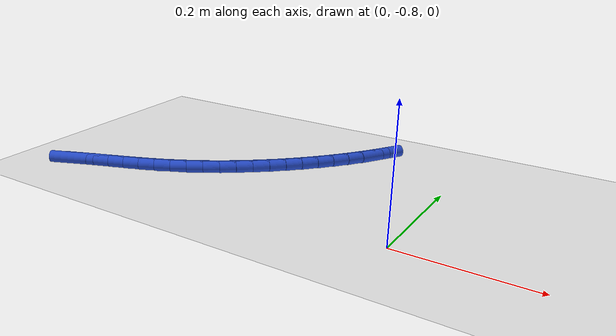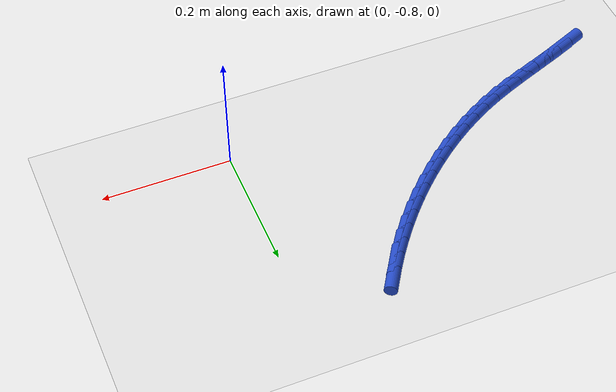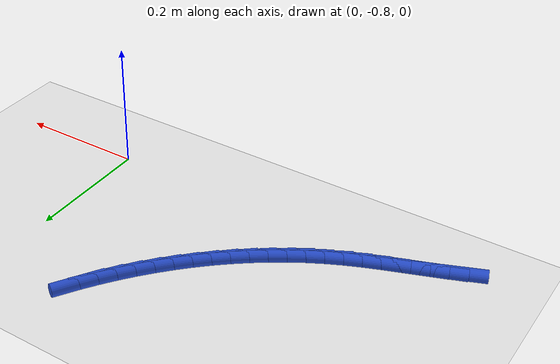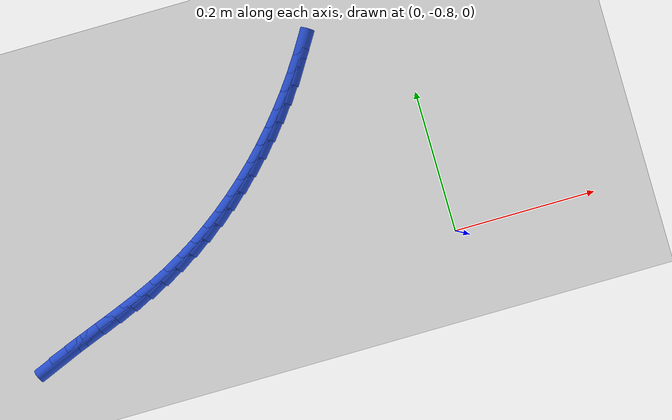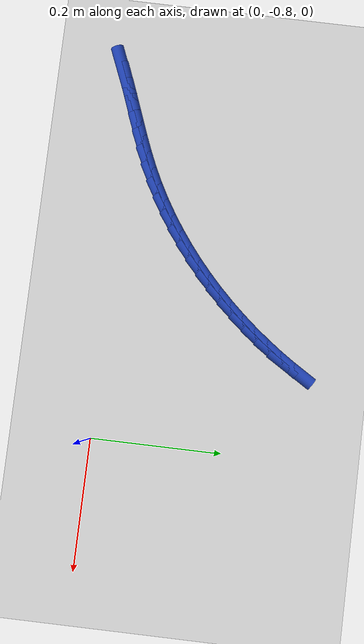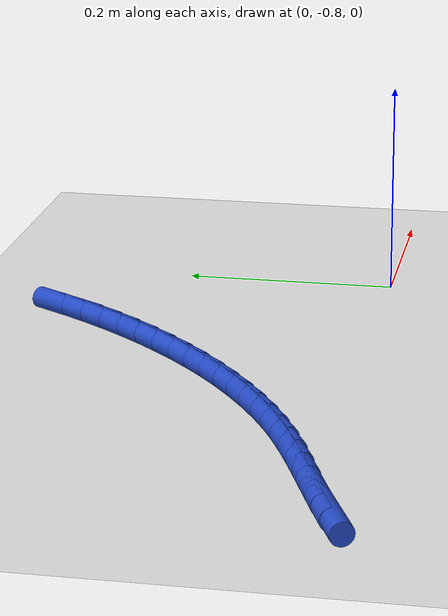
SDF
<sdf version="1.6">
 <world name="default">
  <model name="ground_plane">
   <static>1</static>
   <link name="link">
    <collision name="collision">
     <geometry><plane><normal>0 0 1</normal><size>100 100</size></plane></geometry>
     <surface><friction><ode><mu>100</mu><mu2>50</mu2></ode></friction></surface>
    </collision>
    <visual name="visual">
     <cast_shadows>0</cast_shadows>
     <geometry><plane><normal>0 0 1</normal><size>100 100</size></plane></geometry>
     <material>
      <script><uri>file://media/materials/scripts/gazebo.material</uri><name>Gazebo/WhiteGlow</name></script>
     </material>
    </visual>
   </link>
  </model>
  <model name="line">
   <link name="link_210">
    <pose>-0.570153040938825 -0.8192236299919338 0.01 0 1.57 0.392422162775943</pose>
    <collision name="collision">
     <geometry><cylinder><radius>0.01</radius><length>0.08</length></cylinder></geometry>
    </collision>
    <visual name="visual">
     <material>
      <script><name>Gazebo/Blue</name><uri>file://media/materials/scripts/gazebo.material</uri></script>
     </material>
     <geometry><cylinder><radius>0.01</radius><length>0.08</length></cylinder></geometry>
    </visual>
   </link>
   <link name="link_211">
    <pose>-0.5455073844035369 -0.8090230596921567 0.01 0 1.57 0.3703964797144179</pose>
    <collision name="collision">
     <geometry><cylinder><radius>0.01</radius><length>0.08</length></cylinder></geometry>
    </collision>
    <visual name="visual">
     <material>
      <script><name>Gazebo/Blue</name><uri>file://media/materials/scripts/gazebo.material</uri></script>
     </material>
     <geometry><cylinder><radius>0.01</radius><length>0.08</length></cylinder></geometry>
    </visual>
   </link>
   <link name="link_212">
    <pose>-0.5205335276694825 -0.7993252277009665 0.01 0 1.57 0.36165770922074975</pose>
    <collision name="collision">
     <geometry><cylinder><radius>0.01</radius><length>0.08</length></cylinder></geometry>
    </collision>
    <visual name="visual">
     <material>
      <script><name>Gazebo/Blue</name><uri>file://media/materials/scripts/gazebo.material</uri></script>
     </material>
     <geometry><cylinder><radius>0.01</radius><length>0.08</length></cylinder></geometry>
    </visual>
   </link>
   <link name="link_213">
    <pose>-0.4953955121612875 -0.7898156017275301 0.01 0 1.57 0.3660450002886632</pose>
    <collision name="collision">
     <geometry><cylinder><radius>0.01</radius><length>0.08</length></cylinder></geometry>
    </collision>
    <visual name="visual">
     <material>
      <script><name>Gazebo/Blue</name><uri>file://media/materials/scripts/gazebo.material</uri></script>
     </material>
     <geometry><cylinder><radius>0.01</radius><length>0.08</length></cylinder></geometry>
    </visual>
   </link>
   <link name="link_214">
    <pose>-0.4702573793035774 -0.7801796494810139 0.01 0 1.57 0.3835102466614422</pose>
    <collision name="collision">
     <geometry><cylinder><radius>0.01</radius><length>0.08</length></cylinder></geometry>
    </collision>
    <visual name="visual">
     <material>
      <script><name>Gazebo/Blue</name><uri>file://media/materials/scripts/gazebo.material</uri></script>
     </material>
     <geometry><cylinder><radius>0.01</radius><length>0.08</length></cylinder></geometry>
    </visual>
   </link>
   <link name="link_215">
    <pose>-0.44528317052097854 -0.7701028386705852 0.01 0 1.57 0.4140939408006343</pose>
    <collision name="collision">
     <geometry><cylinder><radius>0.01</radius><length>0.08</length></cylinder></geometry>
    </collision>
    <visual name="visual">
     <material>
      <script><name>Gazebo/Blue</name><uri>file://media/materials/scripts/gazebo.material</uri></script>
     </material>
     <geometry><cylinder><radius>0.01</radius><length>0.08</length></cylinder></geometry>
    </visual>
   </link>
   <link name="link_216">
    <pose>-0.4206369272381162 -0.7592706370054106 0.01 0 1.57 0.4567547269736191</pose>
    <collision name="collision">
     <geometry><cylinder><radius>0.01</radius><length>0.08</length></cylinder></geometry>
    </collision>
    <visual name="visual">
     <material>
      <script><name>Gazebo/Blue</name><uri>file://media/materials/scripts/gazebo.material</uri></script>
     </material>
     <geometry><cylinder><radius>0.01</radius><length>0.08</length></cylinder></geometry>
    </visual>
   </link>
   <link name="link_217">
    <pose>-0.3964721952131345 -0.7473957649721427 0.01 0 1.57 0.5025643012836766</pose>
    <collision name="collision">
     <geometry><cylinder><radius>0.01</radius><length>0.08</length></cylinder></geometry>
    </collision>
    <visual name="visual">
     <material>
      <script><name>Gazebo/Blue</name><uri>file://media/materials/scripts/gazebo.material</uri></script>
     </material>
     <geometry><cylinder><radius>0.01</radius><length>0.08</length></cylinder></geometry>
    </visual>
   </link>
   <link name="link_218">
    <pose>-0.3728560520044016 -0.7344154641597559 0.01 0 1.57 0.5471644883592591</pose>
    <collision name="collision">
     <geometry><cylinder><radius>0.01</radius><length>0.08</length></cylinder></geometry>
    </collision>
    <visual name="visual">
     <material>
      <script><name>Gazebo/Blue</name><uri>file://media/materials/scripts/gazebo.material</uri></script>
     </material>
     <geometry><cylinder><radius>0.01</radius><length>0.08</length></cylinder></geometry>
    </visual>
   </link>
   <link name="link_219">
    <pose>-0.34981304151763565 -0.7203774179451137 0.01 0 1.57 0.5905762626504626</pose>
    <collision name="collision">
     <geometry><cylinder><radius>0.01</radius><length>0.08</length></cylinder></geometry>
    </collision>
    <visual name="visual">
     <material>
      <script><name>Gazebo/Blue</name><uri>file://media/materials/scripts/gazebo.material</uri></script>
     </material>
     <geometry><cylinder><radius>0.01</radius><length>0.08</length></cylinder></geometry>
    </visual>
   </link>
   <link name="link_220">
    <pose>-0.3273674113472148 -0.7053300790994796 0.01 0 1.57 0.6328653425471917</pose>
    <collision name="collision">
     <geometry><cylinder><radius>0.01</radius><length>0.08</length></cylinder></geometry>
    </collision>
    <visual name="visual">
     <material>
      <script><name>Gazebo/Blue</name><uri>file://media/materials/scripts/gazebo.material</uri></script>
     </material>
     <geometry><cylinder><radius>0.01</radius><length>0.08</length></cylinder></geometry>
    </visual>
   </link>
   <link name="link_221">
    <pose>-0.3055434090875171 -0.6893219003941173 0.01 0 1.57 0.6741090576575565</pose>
    <collision name="collision">
     <geometry><cylinder><radius>0.01</radius><length>0.08</length></cylinder></geometry>
    </collision>
    <visual name="visual">
     <material>
      <script><name>Gazebo/Blue</name><uri>file://media/materials/scripts/gazebo.material</uri></script>
     </material>
     <geometry><cylinder><radius>0.01</radius><length>0.08</length></cylinder></geometry>
    </visual>
   </link>
   <link name="link_222">
    <pose>-0.2843652823329204 -0.6724013346002908 0.01 0 1.57 0.7143940551724819</pose>
    <collision name="collision">
     <geometry><cylinder><radius>0.01</radius><length>0.08</length></cylinder></geometry>
    </collision>
    <visual name="visual">
     <material>
      <script><name>Gazebo/Blue</name><uri>file://media/materials/scripts/gazebo.material</uri></script>
     </material>
     <geometry><cylinder><radius>0.01</radius><length>0.08</length></cylinder></geometry>
    </visual>
   </link>
   <link name="link_223">
    <pose>-0.2638572786778031 -0.6546168344892637 0.01 0 1.57 0.7538143685410655</pose>
    <collision name="collision">
     <geometry><cylinder><radius>0.01</radius><length>0.08</length></cylinder></geometry>
    </collision>
    <visual name="visual">
     <material>
      <script><name>Gazebo/Blue</name><uri>file://media/materials/scripts/gazebo.material</uri></script>
     </material>
     <geometry><cylinder><radius>0.01</radius><length>0.08</length></cylinder></geometry>
    </visual>
   </link>
   <link name="link_224">
    <pose>-0.244043645716543 -0.6360168528322995 0.01 0 1.57 0.7924698457596494</pose>
    <collision name="collision">
     <geometry><cylinder><radius>0.01</radius><length>0.08</length></cylinder></geometry>
    </collision>
    <visual name="visual">
     <material>
      <script><name>Gazebo/Blue</name><uri>file://media/materials/scripts/gazebo.material</uri></script>
     </material>
     <geometry><cylinder><radius>0.01</radius><length>0.08</length></cylinder></geometry>
    </visual>
   </link>
   <link name="link_225">
    <pose>-0.22494863104351825 -0.6166498424006618 0.01 0 1.57 0.83046491697088</pose>
    <collision name="collision">
     <geometry><cylinder><radius>0.01</radius><length>0.08</length></cylinder></geometry>
    </collision>
    <visual name="visual">
     <material>
      <script><name>Gazebo/Blue</name><uri>file://media/materials/scripts/gazebo.material</uri></script>
     </material>
     <geometry><cylinder><radius>0.01</radius><length>0.08</length></cylinder></geometry>
    </visual>
   </link>
   <link name="link_226">
    <pose>-0.2065964822531068 -0.5965642559656146 0.01 0 1.57 0.8679076702498905</pose>
    <collision name="collision">
     <geometry><cylinder><radius>0.01</radius><length>0.08</length></cylinder></geometry>
    </collision>
    <visual name="visual">
     <material>
      <script><name>Gazebo/Blue</name><uri>file://media/materials/scripts/gazebo.material</uri></script>
     </material>
     <geometry><cylinder><radius>0.01</radius><length>0.08</length></cylinder></geometry>
    </visual>
   </link>
   <link name="link_227">
    <pose>-0.18901144693968686 -0.5758085462984217 0.01 0 1.57 0.904909198696733</pose>
    <collision name="collision">
     <geometry><cylinder><radius>0.01</radius><length>0.08</length></cylinder></geometry>
    </collision>
    <visual name="visual">
     <material>
      <script><name>Gazebo/Blue</name><uri>file://media/materials/scripts/gazebo.material</uri></script>
     </material>
     <geometry><cylinder><radius>0.01</radius><length>0.08</length></cylinder></geometry>
    </visual>
   </link>
   <link name="link_228">
    <pose>-0.17221777269763638 -0.5544311661703464 0.01 0 1.57 0.9415831796503022</pose>
    <collision name="collision">
     <geometry><cylinder><radius>0.01</radius><length>0.08</length></cylinder></geometry>
    </collision>
    <visual name="visual">
     <material>
      <script><name>Gazebo/Blue</name><uri>file://media/materials/scripts/gazebo.material</uri></script>
     </material>
     <geometry><cylinder><radius>0.01</radius><length>0.08</length></cylinder></geometry>
    </visual>
   </link>
   <link name="link_229">
    <pose>-0.15623970712133348 -0.5324805683526525 0.01 0 1.57 0.9780456466081188</pose>
    <collision name="collision">
     <geometry><cylinder><radius>0.01</radius><length>0.08</length></cylinder></geometry>
    </collision>
    <visual name="visual">
     <material>
      <script><name>Gazebo/Blue</name><uri>file://media/materials/scripts/gazebo.material</uri></script>
     </material>
     <geometry><cylinder><radius>0.01</radius><length>0.08</length></cylinder></geometry>
    </visual>
   </link>
   <link name="link_230">
    <pose>-0.14110149780515618 -0.5100052056166041 0.01 0 1.57 1.0144149151562927</pose>
    <collision name="collision">
     <geometry><cylinder><radius>0.01</radius><length>0.08</length></cylinder></geometry>
    </collision>
    <visual name="visual">
     <material>
      <script><name>Gazebo/Blue</name><uri>file://media/materials/scripts/gazebo.material</uri></script>
     </material>
     <geometry><cylinder><radius>0.01</radius><length>0.08</length></cylinder></geometry>
    </visual>
   </link>
  </model>
 </world>
</sdf>
